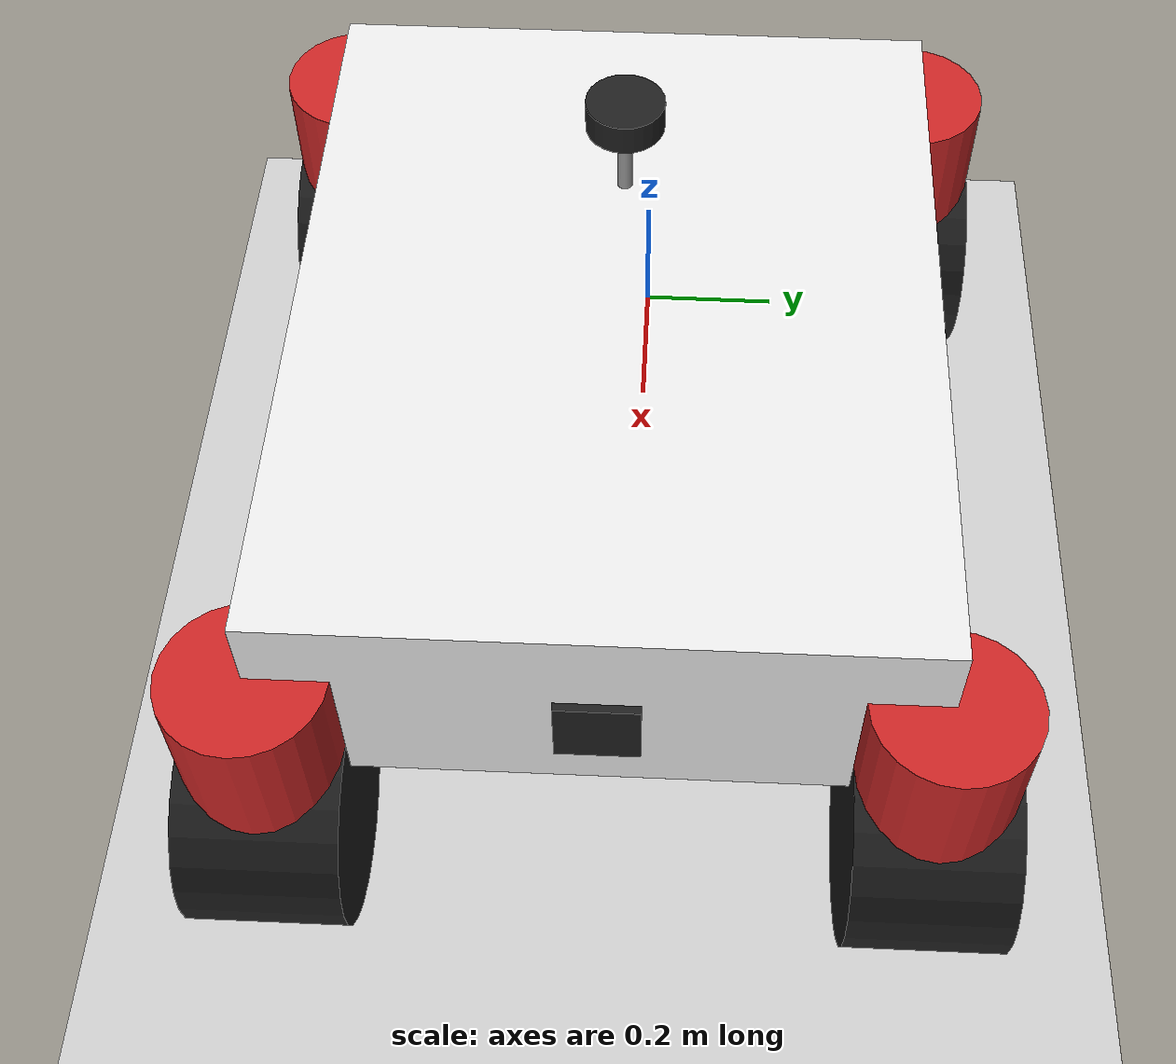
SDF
<sdf version="1.7">
 <world name="default">
  <light name="sun" type="directional">
   <pose>0 0 10 0 -0 0</pose>
   <diffuse>0.8 0.8 0.8 1</diffuse>
   <specular>0.2 0.2 0.2 1</specular>
   <attenuation>
    <range>1000</range>
    <constant>0.9</constant>
    <linear>0.01</linear>
    <quadratic>0.001</quadratic>
   </attenuation>
   <direction>-0.5 0.1 -0.9</direction>
   <spot><inner_angle>0</inner_angle><outer_angle>0</outer_angle><falloff>0</falloff></spot>
  </light>
  <model name="ground_plane">
   <static>1</static>
   <link name="link">
    <collision name="collision">
     <geometry><plane><normal>0 0 1</normal><size>100 100</size></plane></geometry>
     <surface><friction><ode><mu>100</mu><mu2>50</mu2></ode></friction></surface>
    </collision>
    <visual name="visual">
     <cast_shadows>0</cast_shadows>
     <geometry><plane><normal>0 0 1</normal><size>100 100</size></plane></geometry>
     <material>
      <script><uri>file://media/materials/scripts/gazebo.material</uri><name>Gazebo/Grey</name></script>
     </material>
    </visual>
   </link>
  </model>
  <gravity>0 0 -9.8</gravity>
  <magnetic_field>6e-06 2.3e-05 -4.2e-05</magnetic_field>
  <atmosphere type="adiabatic"/>
  <physics type="ode">
   <max_step_size>0.001</max_step_size>
   <real_time_factor>1</real_time_factor>
   <real_time_update_rate>1000</real_time_update_rate>
  </physics>
  <scene><ambient>0.4 0.4 0.4 1</ambient><background>0.7 0.7 0.7 1</background><shadows>1</shadows></scene>
  <audio><device>default</device></audio>
  <spherical_coordinates>
   <surface_model>EARTH_WGS84</surface_model>
   <latitude_deg>0</latitude_deg>
   <longitude_deg>0</longitude_deg>
   <elevation>0</elevation>
   <heading_deg>0</heading_deg>
  </spherical_coordinates>
  <model name="my_bot">
   <link name="base_link">
    <inertial>
     <pose>0.496078 0 0.403676 0 -0 0</pose>
     <mass>3.06</mass>
     <inertia>
      <ixx>0.184717</ixx>
      <ixy>0</ixy>
      <ixz>0.00220588</ixz>
      <iyy>0.27707</iyy>
      <iyz>0</iyz>
      <izz>0.412368</izz>
     </inertia>
    </inertial>
    <collision name="base_link_fixed_joint_lump__chassis_link_collision">
     <pose>0.5 0 0.4 0 -0 0</pose>
     <geometry><box><size>1 0.8 0.3</size></box></geometry>
    </collision>
    <collision name="base_link_fixed_joint_lump__lidar_post_collision_1">
     <pose>0.3 0 0.575 0 -0 0</pose>
     <geometry><cylinder><length>0.15</length><radius>0.01</radius></cylinder></geometry>
    </collision>
    <collision name="base_link_fixed_joint_lump__laser_frame_collision_2">
     <pose>0.3 0 0.65 0 -0 0</pose>
     <geometry><cylinder><length>0.04</length><radius>0.05</radius></cylinder></geometry>
    </collision>
    <visual name="base_link_fixed_joint_lump__chassis_link_visual">
     <pose>0.5 0 0.4 0 -0 0</pose>
     <geometry><box><size>1 0.8 0.3</size></box></geometry>
     <material>
      <script><name>Gazebo/White</name><uri>file://media/materials/scripts/gazebo.material</uri></script>
     </material>
    </visual>
    <visual name="base_link_fixed_joint_lump__camera_link_visual_1">
     <pose>1.02 0 0.4 0 -0 0</pose>
     <geometry><box><size>0.01 0.1 0.1</size></box></geometry>
     <material>
      <script><name>Gazebo/Black</name><uri>file://media/materials/scripts/gazebo.material</uri></script>
     </material>
    </visual>
    <visual name="base_link_fixed_joint_lump__lidar_post_visual_2">
     <pose>0.3 0 0.575 0 -0 0</pose>
     <geometry><cylinder><length>0.15</length><radius>0.01</radius></cylinder></geometry>
     <material>
      <script><name>Gazebo/Grey</name><uri>file://media/materials/scripts/gazebo.material</uri></script>
     </material>
    </visual>
    <visual name="base_link_fixed_joint_lump__laser_frame_visual_3">
     <pose>0.3 0 0.67 0 -0 0</pose>
     <geometry><cylinder><length>0.04</length><radius>0.05</radius></cylinder></geometry>
     <material>
      <script><name>Gazebo/Black</name><uri>file://media/materials/scripts/gazebo.material</uri></script>
     </material>
    </visual>
    <sensor name="camera" type="depth">
     <visualize>1</visualize>
     <update_rate>20</update_rate>
     <camera>
      <horizontal_fov>1.089</horizontal_fov>
      <image><width>640</width><height>480</height><format>R8G8B8</format></image>
      <clip><near>0.1</near><far>8</far></clip>
     </camera>
     <plugin name="camera_controller" filename="libgazebo_ros_camera.so">
      <frame_name>camera_link_optical</frame_name>
     </plugin>
     <pose>1.02 0 0.4 0 -0 0</pose>
    </sensor>
    <sensor name="laser" type="ray">
     <visualize>1</visualize>
     <update_rate>20</update_rate>
     <ray>
      <scan>
       <horizontal>
        <samples>360</samples>
        <min_angle>-3.14</min_angle>
        <max_angle>3.14</max_angle>
        <resolution>1</resolution>
       </horizontal>
       <vertical><samples>1</samples><min_angle>0</min_angle><max_angle>0</max_angle></vertical>
      </scan>
      <range><min>0.3</min><max>12</max></range>
     </ray>
     <plugin name="laser_controller" filename="libgazebo_ros_ray_sensor.so">
      <ros><argument>~/out:=scan</argument></ros>
      <output_type>sensor_msgs/LaserScan</output_type>
      <frame_name>laser_frame</frame_name>
     </plugin>
     <pose>0.3 0 0.65 0 -0 0</pose>
    </sensor>
   </link>
   <joint name="left_back_steering_joint" type="revolute">
    <pose relative_to="base_link">0 0.4 0.3 0 -0 0</pose>
    <parent>base_link</parent>
    <child>left_back_steering_link</child>
    <axis>
     <xyz>0 0 1</xyz>
     <limit><lower>-1e+16</lower><upper>1e+16</upper></limit>
     <dynamics><spring_reference>0</spring_reference><spring_stiffness>0</spring_stiffness></dynamics>
    </axis>
   </joint>
   <link name="left_back_steering_link">
    <pose relative_to="left_back_steering_joint">0 0 0 0 -0 0</pose>
    <inertial>
     <mass>0.25</mass>
     <inertia><ixx>0.0025</ixx><ixy>0</ixy><ixz>0</ixz><iyy>0.0025</iyy><iyz>0</iyz><izz>0.00125</izz></inertia>
    </inertial>
    <collision name="left_back_steering_link_collision">
     <geometry><cylinder><length>0.3</length><radius>0.1</radius></cylinder></geometry>
    </collision>
    <visual name="left_back_steering_link_visual">
     <geometry><cylinder><length>0.3</length><radius>0.1</radius></cylinder></geometry>
     <material>
      <script><name>Gazebo/Red</name><uri>file://media/materials/scripts/gazebo.material</uri></script>
     </material>
    </visual>
   </link>
   <joint name="left_back_wheel_joint" type="revolute">
    <pose relative_to="left_back_steering_link">0 0 -0.15 -1.5708 0 0</pose>
    <parent>left_back_steering_link</parent>
    <child>left_back_wheel_link</child>
    <axis>
     <xyz>0 0 1</xyz>
     <limit><lower>-1e+16</lower><upper>1e+16</upper></limit>
     <dynamics><spring_reference>0</spring_reference><spring_stiffness>0</spring_stiffness></dynamics>
    </axis>
   </joint>
   <link name="left_back_wheel_link">
    <pose relative_to="left_back_wheel_joint">0 0 0 0 -0 0</pose>
    <inertial>
     <mass>0.5</mass>
     <inertia>
      <ixx>0.00447917</ixx>
      <ixy>0</ixy>
      <ixz>0</ixz>
      <iyy>0.00447917</iyy>
      <iyz>0</iyz>
      <izz>0.005625</izz>
     </inertia>
    </inertial>
    <collision name="left_back_wheel_link_collision">
     <geometry><cylinder><length>0.2</length><radius>0.15</radius></cylinder></geometry>
    </collision>
    <visual name="left_back_wheel_link_visual">
     <geometry><cylinder><length>0.2</length><radius>0.15</radius></cylinder></geometry>
     <material>
      <script><name>Gazebo/Black</name><uri>file://media/materials/scripts/gazebo.material</uri></script>
     </material>
    </visual>
   </link>
   <joint name="left_front_steering_joint" type="revolute">
    <pose relative_to="base_link">1 0.4 0.3 0 -0 0</pose>
    <parent>base_link</parent>
    <child>left_front_steering_link</child>
    <axis>
     <xyz>0 0 1</xyz>
     <limit><lower>-1e+16</lower><upper>1e+16</upper></limit>
     <dynamics><spring_reference>0</spring_reference><spring_stiffness>0</spring_stiffness></dynamics>
    </axis>
   </joint>
   <link name="left_front_steering_link">
    <pose relative_to="left_front_steering_joint">0 0 0 0 -0 0</pose>
    <inertial>
     <mass>0.25</mass>
     <inertia><ixx>0.0025</ixx><ixy>0</ixy><ixz>0</ixz><iyy>0.0025</iyy><iyz>0</iyz><izz>0.00125</izz></inertia>
    </inertial>
    <collision name="left_front_steering_link_collision">
     <geometry><cylinder><length>0.3</length><radius>0.1</radius></cylinder></geometry>
    </collision>
    <visual name="left_front_steering_link_visual">
     <geometry><cylinder><length>0.3</length><radius>0.1</radius></cylinder></geometry>
     <material>
      <script><name>Gazebo/Red</name><uri>file://media/materials/scripts/gazebo.material</uri></script>
     </material>
    </visual>
   </link>
   <joint name="left_front_wheel_joint" type="revolute">
    <pose relative_to="left_front_steering_link">0 0 -0.15 -1.5708 0 0</pose>
    <parent>left_front_steering_link</parent>
    <child>left_front_wheel_link</child>
    <axis>
     <xyz>0 0 1</xyz>
     <limit><lower>-1e+16</lower><upper>1e+16</upper></limit>
     <dynamics><spring_reference>0</spring_reference><spring_stiffness>0</spring_stiffness></dynamics>
    </axis>
   </joint>
   <link name="left_front_wheel_link">
    <pose relative_to="left_front_wheel_joint">0 0 0 0 -0 0</pose>
    <inertial>
     <mass>0.5</mass>
     <inertia>
      <ixx>0.00447917</ixx>
      <ixy>0</ixy>
      <ixz>0</ixz>
      <iyy>0.00447917</iyy>
      <iyz>0</iyz>
      <izz>0.005625</izz>
     </inertia>
    </inertial>
    <collision name="left_front_wheel_link_collision">
     <geometry><cylinder><length>0.2</length><radius>0.15</radius></cylinder></geometry>
    </collision>
    <visual name="left_front_wheel_link_visual">
     <geometry><cylinder><length>0.2</length><radius>0.15</radius></cylinder></geometry>
     <material>
      <script><name>Gazebo/Black</name><uri>file://media/materials/scripts/gazebo.material</uri></script>
     </material>
    </visual>
   </link>
   <joint name="right_back_steering_joint" type="revolute">
    <pose relative_to="base_link">0 -0.4 0.3 0 -0 0</pose>
    <parent>base_link</parent>
    <child>right_back_steering_link</child>
    <axis>
     <xyz>0 0 1</xyz>
     <limit><lower>-1e+16</lower><upper>1e+16</upper></limit>
     <dynamics><spring_reference>0</spring_reference><spring_stiffness>0</spring_stiffness></dynamics>
    </axis>
   </joint>
   <link name="right_back_steering_link">
    <pose relative_to="right_back_steering_joint">0 0 0 0 -0 0</pose>
    <inertial>
     <mass>0.25</mass>
     <inertia><ixx>0.0025</ixx><ixy>0</ixy><ixz>0</ixz><iyy>0.0025</iyy><iyz>0</iyz><izz>0.00125</izz></inertia>
    </inertial>
    <collision name="right_back_steering_link_collision">
     <geometry><cylinder><length>0.3</length><radius>0.1</radius></cylinder></geometry>
    </collision>
    <visual name="right_back_steering_link_visual">
     <geometry><cylinder><length>0.3</length><radius>0.1</radius></cylinder></geometry>
     <material>
      <script><name>Gazebo/Red</name><uri>file://media/materials/scripts/gazebo.material</uri></script>
     </material>
    </visual>
   </link>
   <joint name="right_back_wheel_joint" type="revolute">
    <pose relative_to="right_back_steering_link">0 0 -0.15 -1.5708 0 0</pose>
    <parent>right_back_steering_link</parent>
    <child>right_back_wheel_link</child>
    <axis>
     <xyz>0 0 1</xyz>
     <limit><lower>-1e+16</lower><upper>1e+16</upper></limit>
     <dynamics><spring_reference>0</spring_reference><spring_stiffness>0</spring_stiffness></dynamics>
    </axis>
   </joint>
   <link name="right_back_wheel_link">
    <pose relative_to="right_back_wheel_joint">0 0 0 0 -0 0</pose>
    <inertial>
     <mass>0.5</mass>
     <inertia>
      <ixx>0.00447917</ixx>
      <ixy>0</ixy>
      <ixz>0</ixz>
      <iyy>0.00447917</iyy>
      <iyz>0</iyz>
      <izz>0.005625</izz>
     </inertia>
    </inertial>
    <collision name="right_back_wheel_link_collision">
     <geometry><cylinder><length>0.2</length><radius>0.15</radius></cylinder></geometry>
    </collision>
    <visual name="right_back_wheel_link_visual">
     <geometry><cylinder><length>0.2</length><radius>0.15</radius></cylinder></geometry>
     <material>
      <script><name>Gazebo/Black</name><uri>file://media/materials/scripts/gazebo.material</uri></script>
     </material>
    </visual>
   </link>
   <joint name="right_front_steering_joint" type="revolute">
    <pose relative_to="base_link">1 -0.4 0.3 0 -0 0</pose>
    <parent>base_link</parent>
    <child>right_front_steering_link</child>
    <axis>
     <xyz>0 0 1</xyz>
     <limit><lower>-1e+16</lower><upper>1e+16</upper></limit>
     <dynamics><spring_reference>0</spring_reference><spring_stiffness>0</spring_stiffness></dynamics>
    </axis>
   </joint>
   <link name="right_front_steering_link">
    <pose relative_to="right_front_steering_joint">0 0 0 0 -0 0</pose>
    <inertial>
     <mass>0.25</mass>
     <inertia><ixx>0.0025</ixx><ixy>0</ixy><ixz>0</ixz><iyy>0.0025</iyy><iyz>0</iyz><izz>0.00125</izz></inertia>
    </inertial>
    <collision name="right_front_steering_link_collision">
     <geometry><cylinder><length>0.3</length><radius>0.1</radius></cylinder></geometry>
    </collision>
    <visual name="right_front_steering_link_visual">
     <geometry><cylinder><length>0.3</length><radius>0.1</radius></cylinder></geometry>
     <material>
      <script><name>Gazebo/Red</name><uri>file://media/materials/scripts/gazebo.material</uri></script>
     </material>
    </visual>
   </link>
   <joint name="right_front_wheel_joint" type="revolute">
    <pose relative_to="right_front_steering_link">0 0 -0.15 -1.5708 0 0</pose>
    <parent>right_front_steering_link</parent>
    <child>right_front_wheel_link</child>
    <axis>
     <xyz>0 0 1</xyz>
     <limit><lower>-1e+16</lower><upper>1e+16</upper></limit>
     <dynamics><spring_reference>0</spring_reference><spring_stiffness>0</spring_stiffness></dynamics>
    </axis>
   </joint>
   <link name="right_front_wheel_link">
    <pose relative_to="right_front_wheel_joint">0 0 0 0 -0 0</pose>
    <inertial>
     <mass>0.5</mass>
     <inertia>
      <ixx>0.00447917</ixx>
      <ixy>0</ixy>
      <ixz>0</ixz>
      <iyy>0.00447917</iyy>
      <iyz>0</iyz>
      <izz>0.005625</izz>
     </inertia>
    </inertial>
    <collision name="right_front_wheel_link_collision">
     <geometry><cylinder><length>0.2</length><radius>0.15</radius></cylinder></geometry>
    </collision>
    <visual name="right_front_wheel_link_visual">
     <geometry><cylinder><length>0.2</length><radius>0.15</radius></cylinder></geometry>
     <material>
      <script><name>Gazebo/Black</name><uri>file://media/materials/scripts/gazebo.material</uri></script>
     </material>
    </visual>
   </link>
   <static>0</static>
   <plugin name="gazebo_ros2_control" filename="libgazebo_ros2_control.so">
    <parameters>/home/fuga1129/aurora_sim_v2/install/aurora1/share/aurora1/config/rover_controller_4wd_v2.yaml</parameters>
   </plugin>
   <pose>0.000167 -0.025645 -0 0 -0 -0.000898</pose>
  </model>
 </world>
</sdf>
